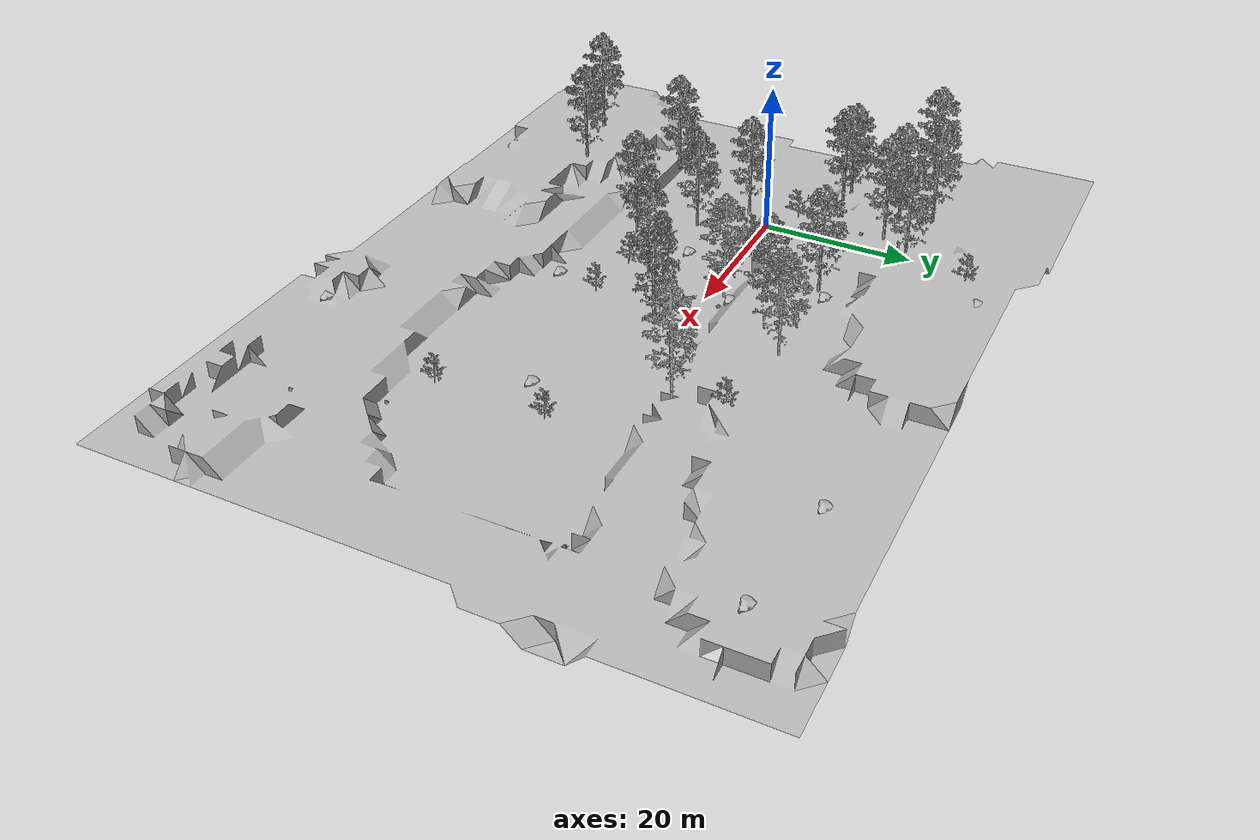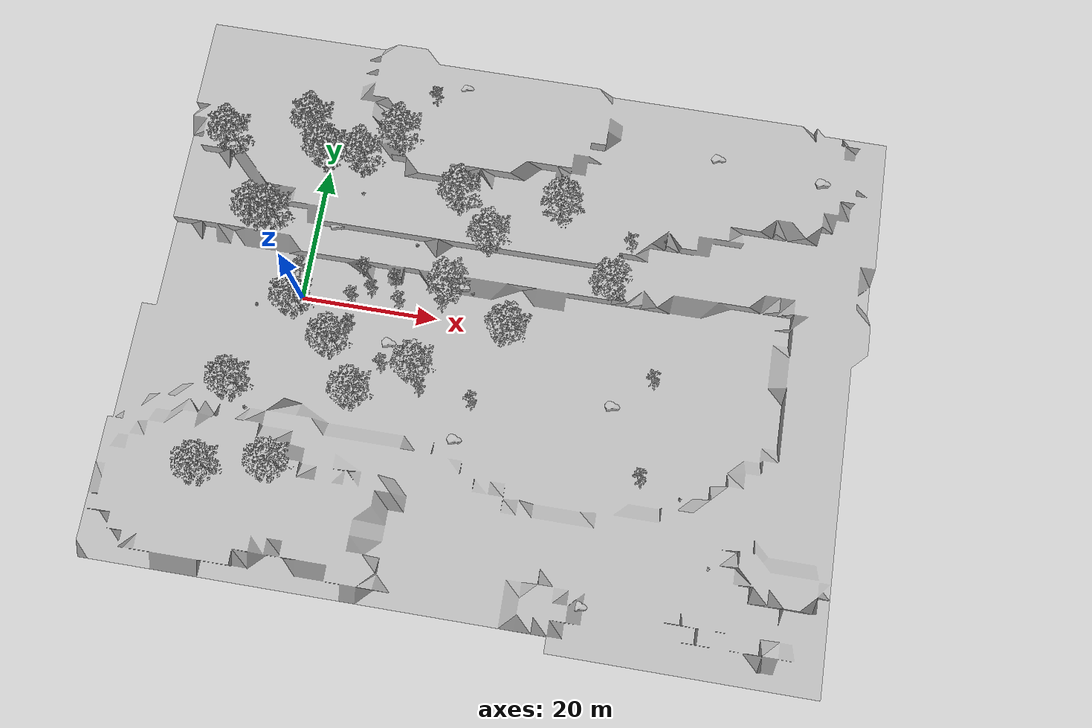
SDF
<sdf version="1.9">
 <world name="my_world">
  <gravity>0 0 -9.8</gravity>
  <physics type="ode">
   <max_step_size>0.001</max_step_size>
   <real_time_factor>1</real_time_factor>
   <real_time_update_rate>1000</real_time_update_rate>
  </physics>
  <scene>
   <ambient>0.5 0.5 0.5 1</ambient>
   <background>0.7 0.7 0.7 1</background>
   <shadows>true</shadows>
   <sky><clouds><speed>12</speed></clouds></sky>
   <grid>false</grid>
   <origin_visual>false</origin_visual>
  </scene>
  <magnetic_field>6e-06 2.3e-05 -4.2e-05</magnetic_field>
  <atmosphere type="adiabatic"/>
  <light name="sun" type="directional">
   <pose>0 0 100 0 0 0</pose>
   <diffuse>0.9 0.9 0.9 1</diffuse>
   <specular>0.3 0.3 0.3 1</specular>
   <attenuation>
    <range>1000</range>
    <constant>0.9</constant>
    <linear>0.01</linear>
    <quadratic>0.001</quadratic>
   </attenuation>
   <direction>-0.5 0.1 -0.9</direction>
  </light>
  <include>
   <uri>file:///tmp/build_ws/install/mini_bot_pkg/share/mini_bot_pkg/worlds/meshes/map_model.sdf</uri>
   <name>my_map</name>
   <pose>0 0 -2.62235 0 0 0</pose>
  </include>
  <include>
   <uri>file:///tmp/build_ws/install/mini_bot_pkg/share/mini_bot_pkg/worlds/rocks.sdf</uri>
   <name>my_rocks</name>
   <pose>0 0 -2 0 0 0</pose>
  </include>
  <include>
   <uri>file:///tmp/build_ws/install/mini_bot_pkg/share/mini_bot_pkg/worlds/rocks.sdf</uri>
   <name>my_rocks_1</name>
   <pose>7.264 -0.808 -1.94 0 0 0</pose>
  </include>
  <include>
   <uri>file:///tmp/build_ws/install/mini_bot_pkg/share/mini_bot_pkg/worlds/rocks.sdf</uri>
   <name>my_rocks_2</name>
   <pose>18.962 -13.112 -1.80 0 0 0</pose>
  </include>
  <include>
   <uri>file:///tmp/build_ws/install/mini_bot_pkg/share/mini_bot_pkg/worlds/rocks.sdf</uri>
   <name>my_rocks_3</name>
   <pose>16.236 20.662 2.4 0 0 0</pose>
  </include>
  <include>
   <uri>file:///tmp/build_ws/install/mini_bot_pkg/share/mini_bot_pkg/worlds/rocks.sdf</uri>
   <name>my_rocks_4</name>
   <pose>65.506 31.858 2.4 0 0 0</pose>
  </include>
  <include>
   <uri>file:///tmp/build_ws/install/mini_bot_pkg/share/mini_bot_pkg/worlds/rocks.sdf</uri>
   <name>my_rocks_5</name>
   <pose>40.268 -4.729 -2.1 0 0 0</pose>
  </include>
  <include>
   <uri>file:///tmp/build_ws/install/mini_bot_pkg/share/mini_bot_pkg/worlds/rocks.sdf</uri>
   <name>my_rocks_6</name>
   <pose>12.273 37.521 4.0 0 0 0</pose>
  </include>
  <include>
   <uri>file:///tmp/build_ws/install/mini_bot_pkg/share/mini_bot_pkg/worlds/rocks.sdf</uri>
   <name>my_rocks_7</name>
   <pose>66.054 16.437 -0.90 0 0 0</pose>
  </include>
  <include>
   <uri>file:///tmp/build_ws/install/mini_bot_pkg/share/mini_bot_pkg/worlds/rocks.sdf</uri>
   <name>my_rocks_8</name>
   <pose>62.607 -24.749 1.2 0 0 0</pose>
  </include>
  <include>
   <uri>file:///tmp/build_ws/install/mini_bot_pkg/share/mini_bot_pkg/worlds/rocks.sdf</uri>
   <name>my_rocks_9</name>
   <pose>50.163 33.35 2 0 0 0</pose>
  </include>
  <include>
   <uri>file:///tmp/build_ws/install/mini_bot_pkg/share/mini_bot_pkg/worlds/rocks.sdf</uri>
   <name>my_rocks_10</name>
   <pose>-12.83 13.03 -0.65 0 0 0</pose>
  </include>
  <include>
   <uri>file:///tmp/build_ws/install/mini_bot_pkg/share/mini_bot_pkg/worlds/rocks.sdf</uri>
   <name>my_rocks_11</name>
   <pose>16.414 8.912 -1.2 0 0 0</pose>
  </include>
  <include>
   <uri>file:///tmp/build_ws/install/mini_bot_pkg/share/mini_bot_pkg/worlds/rocks.sdf</uri>
   <name>my_rocks_12</name>
   <pose>-2.999 14.624 0.8 0 0 0</pose>
  </include>
  <include>
   <uri>file:///tmp/build_ws/install/mini_bot_pkg/share/mini_bot_pkg/worlds/rocks.sdf</uri>
   <name>my_rocks_13</name>
   <pose>56.411 25.554 1.6 0 0 0</pose>
  </include>
  <include>
   <uri>file:///tmp/build_ws/install/mini_bot_pkg/share/mini_bot_pkg/worlds/rocks.sdf</uri>
   <name>my_rocks_14</name>
   <pose>39.49 -32.96 0.75 0 0 0</pose>
  </include>
  <include>
   <uri>file:///tmp/build_ws/install/mini_bot_pkg/share/mini_bot_pkg/worlds/pinus_pinaster.sdf</uri>
   <name>my_pinus_pinaster</name>
   <pose>7 18.2417 6.48795 0 0 0</pose>
  </include>
  <include>
   <uri>file:///tmp/build_ws/install/mini_bot_pkg/share/mini_bot_pkg/worlds/pinus_pinaster.sdf</uri>
   <name>my_pinus_pinaster_1</name>
   <pose>11.6498 22.4133 6.48795 0 0 0</pose>
  </include>
  <include>
   <uri>file:///tmp/build_ws/install/mini_bot_pkg/share/mini_bot_pkg/worlds/pinus_pinaster.sdf</uri>
   <name>my_pinus_pinaster_2</name>
   <pose>-5.88713 -27.6964 6.48795 0 0 0</pose>
  </include>
  <include>
   <uri>file:///tmp/build_ws/install/mini_bot_pkg/share/mini_bot_pkg/worlds/pinus_pinaster.sdf</uri>
   <name>my_pinus_pinaster_3</name>
   <pose>2.87152 -25.7165 5.49625 0 0 0</pose>
  </include>
  <include>
   <uri>file:///tmp/build_ws/install/mini_bot_pkg/share/mini_bot_pkg/worlds/pinus_pinaster.sdf</uri>
   <name>my_pinus_pinaster_4</name>
   <pose>-5.25035 -15.4343 2.84575 0 0 0</pose>
  </include>
  <include>
   <uri>file:///tmp/build_ws/install/mini_bot_pkg/share/mini_bot_pkg/worlds/pinus_pinaster.sdf</uri>
   <name>my_pinus_pinaster_5</name>
   <pose>0.514878 -2.34477 1.85734 0 0 0</pose>
  </include>
  <include>
   <uri>file:///tmp/build_ws/install/mini_bot_pkg/share/mini_bot_pkg/worlds/pinus_pinaster.sdf</uri>
   <name>my_pinus_pinaster_6</name>
   <pose>-4.54535 8.97084 3.59185 0 0 0</pose>
  </include>
  <include>
   <uri>file:///tmp/build_ws/install/mini_bot_pkg/share/mini_bot_pkg/worlds/pinus_pinaster.sdf</uri>
   <name>my_pinus_pinaster_7</name>
   <pose>21.2545 15.0805 5.95974 0 0 0</pose>
  </include>
  <include>
   <uri>file:///tmp/build_ws/install/mini_bot_pkg/share/mini_bot_pkg/worlds/pinus_pinaster.sdf</uri>
   <name>my_pinus_pinaster_8</name>
   <pose>11.0096 -13.9011 1.97495 0 0 0</pose>
  </include>
  <include>
   <uri>file:///tmp/build_ws/install/mini_bot_pkg/share/mini_bot_pkg/worlds/pinus_pinaster.sdf</uri>
   <name>my_pinus_pinaster_9</name>
   <pose>6.72709 -7.19177 1.7893 0 0 0</pose>
  </include>
  <include>
   <uri>file:///tmp/build_ws/install/mini_bot_pkg/share/mini_bot_pkg/worlds/pinus_pinaster.sdf</uri>
   <name>my_pinus_pinaster_10</name>
   <pose>18.531 -8.5736 0.121 0 0 0</pose>
  </include>
  <include>
   <uri>file:///tmp/build_ws/install/mini_bot_pkg/share/mini_bot_pkg/worlds/pinus_pinaster.sdf</uri>
   <name>my_pinus_pinaster_11</name>
   <pose>21.4964 3.15272 2.08213 0 0 0.436103</pose>
  </include>
  <include>
   <uri>file:///tmp/build_ws/install/mini_bot_pkg/share/mini_bot_pkg/worlds/pinus_pinaster.sdf</uri>
   <name>my_pinus_pinaster_12</name>
   <pose>26.1018 10.5035 3.76162 0 0 0</pose>
  </include>
  <include>
   <uri>file:///tmp/build_ws/install/mini_bot_pkg/share/mini_bot_pkg/worlds/pinus_pinaster.sdf</uri>
   <name>my_pinus_pinaster_13</name>
   <pose>35.463 15.8 5.6958 0 0 -1.19676</pose>
  </include>
  <include>
   <uri>file:///tmp/build_ws/install/mini_bot_pkg/share/mini_bot_pkg/worlds/pinus_pinaster.sdf</uri>
   <name>my_pinus_pinaster_14</name>
   <pose>44.5831 7.1589 3.11225 0 -0.117333 0.561469</pose>
  </include>
  <include>
   <uri>file:///tmp/build_ws/install/mini_bot_pkg/share/mini_bot_pkg/worlds/pinus_pinaster.sdf</uri>
   <name>my_pinus_pinaster_15</name>
   <pose>30.6427 -1.71565 2.15145 0 0 -0.336636</pose>
  </include>
  <include>
   <uri>file:///tmp/build_ws/install/mini_bot_pkg/share/mini_bot_pkg/worlds/pinus_pinaster.sdf</uri>
   <name>my_pinus_pinaster_16</name>
   <pose>1.56649 18.4228 5.79553 0 0 0</pose>
  </include>
  <include>
   <uri>file:///tmp/build_ws/install/mini_bot_pkg/share/mini_bot_pkg/worlds/pinus_pinaster.sdf</uri>
   <name>my_pinus_pinaster_17</name>
   <pose>-0.789834 22.1788 6.17642 0 0 0</pose>
  </include>
  <include>
   <uri>file:///tmp/build_ws/install/mini_bot_pkg/share/mini_bot_pkg/worlds/pinus_pinaster.sdf</uri>
   <name>my_pinus_pinaster_18</name>
   <pose>-12.1566 18.9015 5.13423 0 0 0</pose>
  </include>
  <include>
   <uri>file:///tmp/build_ws/install/mini_bot_pkg/share/mini_bot_pkg/worlds/pinus_pinaster.sdf</uri>
   <name>my_pinus_pinaster_19</name>
   <pose>-7.14512 9.22985 2.93354 0 0 0</pose>
  </include>
  <include>
   <uri>file:///tmp/build_ws/install/mini_bot_pkg/share/mini_bot_pkg/worlds/scot_pine.sdf</uri>
   <name>my_scot_pine</name>
   <pose>6.51222 5 2.54389 0 0 0</pose>
  </include>
  <include>
   <uri>file:///tmp/build_ws/install/mini_bot_pkg/share/mini_bot_pkg/worlds/scot_pine.sdf</uri>
   <name>my_scot_pine_1</name>
   <pose>8.1 2.26237 1.90692 0 0 0</pose>
  </include>
  <include>
   <uri>file:///tmp/build_ws/install/mini_bot_pkg/share/mini_bot_pkg/worlds/scot_pine.sdf</uri>
   <name>my_scot_pine_2</name>
   <pose>12.3189 0.999094 2.07876 0 0 0</pose>
  </include>
  <include>
   <uri>file:///tmp/build_ws/install/mini_bot_pkg/share/mini_bot_pkg/worlds/scot_pine.sdf</uri>
   <name>my_scot_pine_3</name>
   <pose>-2.8 4.148 2.1 0.131 0 0</pose>
  </include>
  <include>
   <uri>file:///tmp/build_ws/install/mini_bot_pkg/share/mini_bot_pkg/worlds/scot_pine.sdf</uri>
   <name>my_scot_pine_4</name>
   <pose>18.4681 1.69366 2.07897 0 0 0</pose>
  </include>
  <include>
   <uri>file:///tmp/build_ws/install/mini_bot_pkg/share/mini_bot_pkg/worlds/scot_pine.sdf</uri>
   <name>my_scot_pine_5</name>
   <pose>11.2771 4.02233 2.54389 0 0 0</pose>
  </include>
  <include>
   <uri>file:///tmp/build_ws/install/mini_bot_pkg/share/mini_bot_pkg/worlds/scot_pine.sdf</uri>
   <name>my_scot_pine_6</name>
   <pose>11.5026 -8.46648 1.89463 0 0 0</pose>
  </include>
  <include>
   <uri>file:///tmp/build_ws/install/mini_bot_pkg/share/mini_bot_pkg/worlds/scot_pine.sdf</uri>
   <name>my_scot_pine_7</name>
   <pose>5.84244 -3.51387 1.93519 0 0 0</pose>
  </include>
  <include>
   <uri>file:///tmp/build_ws/install/mini_bot_pkg/share/mini_bot_pkg/worlds/scot_pine.sdf</uri>
   <name>my_scot_pine_8</name>
   <pose>5.44765 0.701309 1.9119 0 0 0</pose>
  </include>
  <include>
   <uri>file:///tmp/build_ws/install/mini_bot_pkg/share/mini_bot_pkg/worlds/scot_pine.sdf</uri>
   <name>my_scot_pine_9</name>
   <pose>17.441 -10.901 1.796 0 0 0</pose>
  </include>
  <include>
   <uri>file:///tmp/build_ws/install/mini_bot_pkg/share/mini_bot_pkg/worlds/scot_pine.sdf</uri>
   <name>my_scot_pine_10</name>
   <pose>49.949 -4.5 1.7 0 0 0</pose>
  </include>
  <include>
   <uri>file:///tmp/build_ws/install/mini_bot_pkg/share/mini_bot_pkg/worlds/scot_pine.sdf</uri>
   <name>my_scot_pine_11</name>
   <pose>24.958 -11.644 1.7 0 0 0</pose>
  </include>
  <include>
   <uri>file:///tmp/build_ws/install/mini_bot_pkg/share/mini_bot_pkg/worlds/scot_pine.sdf</uri>
   <name>my_scot_pine_12</name>
   <pose>43.89 14.002 5.17 0 0 0</pose>
  </include>
  <include>
   <uri>file:///tmp/build_ws/install/mini_bot_pkg/share/mini_bot_pkg/worlds/scot_pine.sdf</uri>
   <name>my_scot_pine_13</name>
   <pose>12.959 30.567 7.82 0 0 0</pose>
  </include>
  <include>
   <uri>file:///tmp/build_ws/install/mini_bot_pkg/share/mini_bot_pkg/worlds/scot_pine.sdf</uri>
   <name>my_scot_pine_14</name>
   <pose>49.865 -18.605 1.9 0 0 0</pose>
  </include>
  <include>
   <uri>file:///tmp/build_ws/install/mini_bot_pkg/share/mini_bot_pkg/worlds/lavander.sdf</uri>
   <name>my_lavander</name>
   <pose>24.429 3.818 2.5 0 0 0</pose>
  </include>
  <include>
   <uri>file:///tmp/build_ws/install/mini_bot_pkg/share/mini_bot_pkg/worlds/lavander.sdf</uri>
   <name>my_lavander_1</name>
   <pose>-4.11 -18.148 4.2 0 0 0</pose>
  </include>
  <include>
   <uri>file:///tmp/build_ws/install/mini_bot_pkg/share/mini_bot_pkg/worlds/lavander.sdf</uri>
   <name>my_lavander_2</name>
   <pose>15.428 9.123 4.75 0 0 0</pose>
  </include>
  <include>
   <uri>file:///tmp/build_ws/install/mini_bot_pkg/share/mini_bot_pkg/worlds/lavander.sdf</uri>
   <name>my_lavander_3</name>
   <pose>5.71 -18.484 3 0 0 0</pose>
  </include>
  <include>
   <uri>file:///tmp/build_ws/install/mini_bot_pkg/share/mini_bot_pkg/worlds/lavander.sdf</uri>
   <name>my_lavander_4</name>
   <pose>-8.611 12.333 4.4 0 0 0</pose>
  </include>
  <include>
   <uri>file:///tmp/build_ws/install/mini_bot_pkg/share/mini_bot_pkg/worlds/lavander.sdf</uri>
   <name>my_lavander_5</name>
   <pose>5.605 32.907 7.2 0 0 0</pose>
  </include>
  <include>
   <uri>file:///tmp/build_ws/install/mini_bot_pkg/share/mini_bot_pkg/worlds/lavander.sdf</uri>
   <name>my_lavander_6</name>
   <pose>62.367 -29.686 4.4 0 0 0</pose>
  </include>
  <include>
   <uri>file:///tmp/build_ws/install/mini_bot_pkg/share/mini_bot_pkg/worlds/lavander.sdf</uri>
   <name>my_lavander_7</name>
   <pose>6.42 15.173 6 0 0 0</pose>
  </include>
  <include>
   <uri>file:///tmp/build_ws/install/mini_bot_pkg/share/mini_bot_pkg/worlds/lavander.sdf</uri>
   <name>my_lavander_8</name>
   <pose>4.281 -25.077 5 0 0 0</pose>
  </include>
  <include>
   <uri>file:///tmp/build_ws/install/mini_bot_pkg/share/mini_bot_pkg/worlds/lavander.sdf</uri>
   <name>my_lavander_9</name>
   <pose>69.196 7.828 2.7 0 0 0</pose>
  </include>
  <include>
   <uri>file:///tmp/build_ws/install/mini_bot_pkg/share/mini_bot_pkg/worlds/lavander.sdf</uri>
   <name>my_lavander_10</name>
   <pose>27.54 23.846 7.67 0 0 0</pose>
  </include>
  <include>
   <uri>file:///tmp/build_ws/install/mini_bot_pkg/share/mini_bot_pkg/worlds/lavander.sdf</uri>
   <name>my_lavander_11</name>
   <pose>57.675 -20.719 2.5 0 0 0</pose>
  </include>
  <include>
   <uri>file:///tmp/build_ws/install/mini_bot_pkg/share/mini_bot_pkg/worlds/lavander.sdf</uri>
   <name>my_lavander_12</name>
   <pose>-6.276 -2.671 2 0 0 0</pose>
  </include>
  <include>
   <uri>file:///tmp/build_ws/install/mini_bot_pkg/share/mini_bot_pkg/worlds/lavander.sdf</uri>
   <name>my_lavander_13</name>
   <pose>23.122 0.027 2 0 0 0</pose>
  </include>
  <include>
   <uri>file:///tmp/build_ws/install/mini_bot_pkg/share/mini_bot_pkg/worlds/lavander.sdf</uri>
   <name>my_lavander_14</name>
   <pose>50.617 15.502 5 0 0 0</pose>
  </include>
 </world>
</sdf>

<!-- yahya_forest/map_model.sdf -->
<sdf version="1.9">
  <model name="my_map">
    <static>true</static>
    <link name="map_link">
      <visual name="map_visual">
        <plugin filename="gz-sim-label-system" name="gz::sim::systems::Label">
          <label>0</label>
        </plugin>
        <geometry>
          <mesh>
            <uri>meshes/Terrain_fixed.dae</uri>
          </mesh>
        </geometry>
      </visual>
      <collision name="map_collision">
        <geometry>
          <mesh>
            <uri>meshes/Terrain_fixed.dae</uri>
          </mesh>
        </geometry>
      </collision>
    </link>
    <pose>0 0 0 0 0 0</pose>
  </model>
</sdf>

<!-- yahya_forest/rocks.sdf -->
<sdf version="1.9">
  <model name="rocks">
    <static>true</static>
    <link name="rocks_link">
      <visual name="rocks_visual">
        <plugin filename="gz-sim-label-system" name="gz::sim::systems::Label">
          <label>7</label>
        </plugin>
        <geometry>
          <mesh>
            <uri>meshes/rocks/model.dae</uri>
          </mesh>
        </geometry>
      </visual>
      <collision name="rocks_collision">
        <geometry>
          <mesh>
            <uri>meshes/rocks/model.dae</uri>
          </mesh>
        </geometry>
      </collision>
    </link>
    <pose>0 0 0 0 0 0</pose>
  </model>
</sdf>

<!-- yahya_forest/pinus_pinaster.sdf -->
<sdf version="1.9">
  <model name="pinus_pinaster">
    <static>true</static>
    <link name="pinaster_link">
      <visual name="Pinus_pinaster">
        <plugin filename="gz-sim-label-system" name="gz::sim::systems::Label">
          <label>9</label>
        </plugin>
        <geometry>
          <mesh>
            <uri>meshes/pinus_pinaster/Pinus_Pinaster.dae</uri>
          </mesh>
        </geometry>
      </visual>
      <collision name="collision">
        <geometry>
          <mesh>
            <uri>meshes/pinus_pinaster/Pinus_Pinaster.dae</uri>
          </mesh>
        </geometry>
      </collision>
    </link>
  </model>
</sdf>

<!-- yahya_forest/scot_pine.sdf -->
<sdf version="1.9">
  <model name="pine_scot">
    <static>true</static>
    <link name="pinelink">
      <visual name="pine_sapling_small_b">
        <plugin filename="gz-sim-label-system" name="gz::sim::systems::Label">
          <label>8</label>
        </plugin>
        <geometry>
          <mesh>
            <uri>meshes/scot_pine/Scot_pine.dae</uri>
            <scale>2 2 2</scale>
          </mesh>
        </geometry>
      </visual>
      <collision name="collision">
        <geometry>
          <mesh>
            <uri>meshes/scot_pine/Scot_pine.dae</uri>
            <scale>2 2 2</scale>
          </mesh>
        </geometry>
      </collision>
    </link>
  </model>
</sdf>

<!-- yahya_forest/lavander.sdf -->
<sdf version="1.9">
  <model name="lavander">
    <static>true</static>
    <link name="lavander_link">
      <visual name="lavander_visual">
        <plugin filename="gz-sim-label-system" name="gz::sim::systems::Label">
          <label>10</label>
        </plugin>
        <geometry>
          <mesh>
            <uri>meshes/lavander/lavander.dae</uri>
          </mesh>
        </geometry>
      </visual>
      <collision name="lavander_collision">
        <geometry>
          <mesh>
            <uri>meshes/lavander/lavander.dae</uri>
          </mesh>
        </geometry>
      </collision>
    </link>
    <pose>0 0 0 0 0 0</pose>
  </model>
</sdf>
